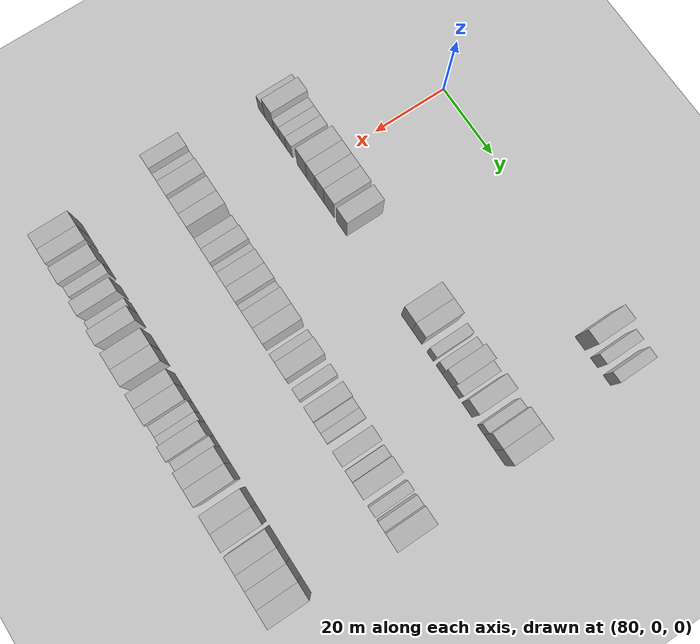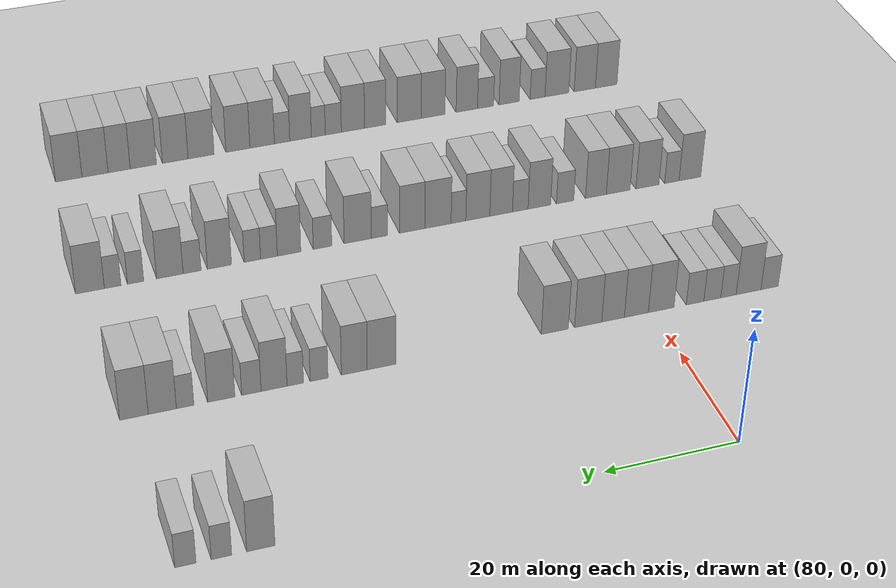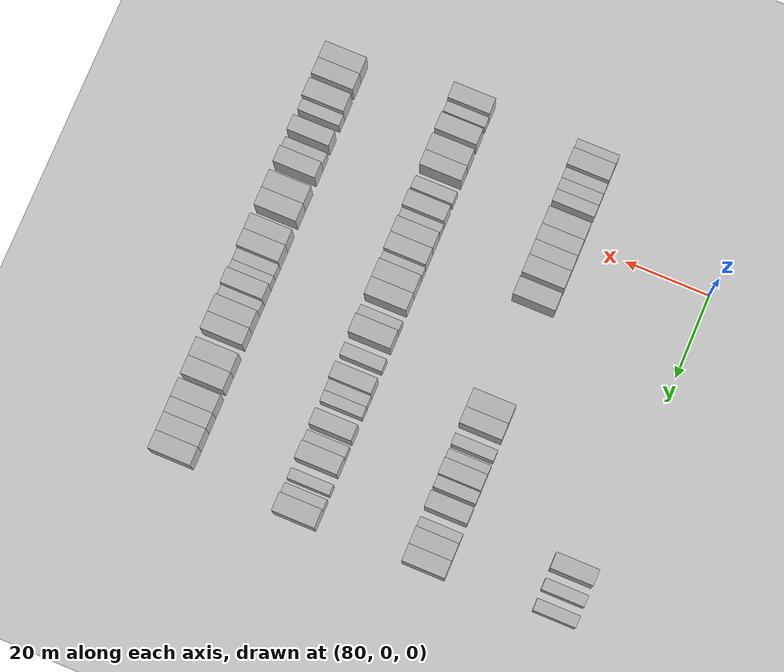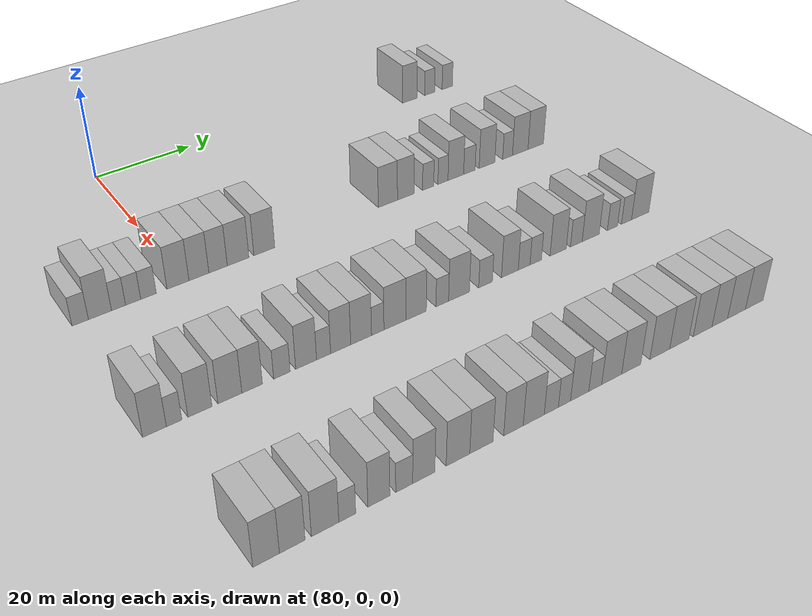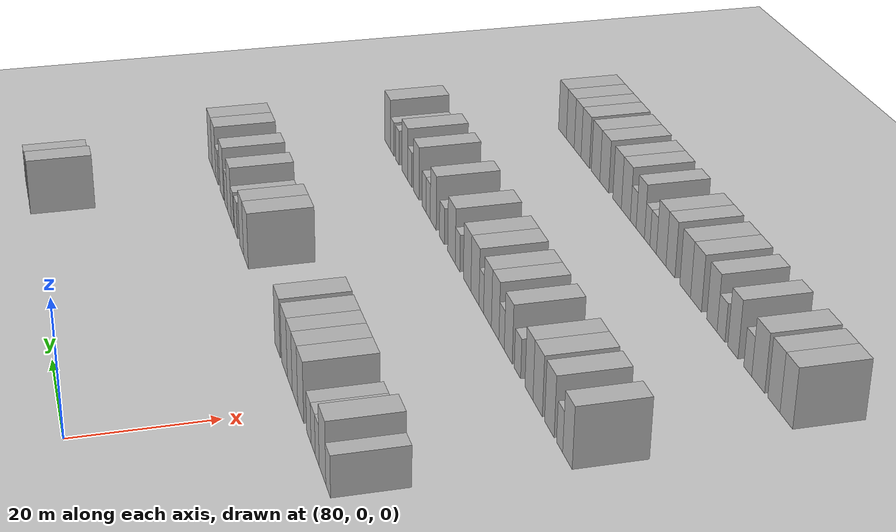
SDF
<sdf version="1.6">
 <world name="default">
  <include>
   <name>ground_plane_2</name>
   <uri>model://HANNAS_ground_plane</uri>
   <pose>100 0 0  0 0 0</pose>
  </include>
  <model name="building_585">
   <static>1</static>
   <pose>85.0000 68.0775 0 0.000000 0.000000 0.000000</pose>
   <link name="link">
    <pose>0 0 4.50 0 0 0</pose>
    <collision name="collision"><geometry><box><size>10.0000 3.7911 9.0000</size></box></geometry></collision>
    <visual name="visual">
     <cast_shadows>0</cast_shadows>
     <geometry><box><size>10.0000 3.7911 9.0000</size></box></geometry>
     <material>
      <script>
       <uri>model://HANNAS_wall/materials/scripts</uri>
       <uri>model://HANNAS_wall/materials/textures</uri>
       <name>vrc/HANNAS_wall</name>
      </script>
     </material>
    </visual>
   </link>
  </model>
  <model name="building_586">
   <static>1</static>
   <pose>85.0000 73.3344 0 0.000000 0.000000 0.000000</pose>
   <link name="link">
    <pose>0 0 3.00 0 0 0</pose>
    <collision name="collision"><geometry><box><size>10.0000 2.7229 6.0000</size></box></geometry></collision>
    <visual name="visual">
     <cast_shadows>0</cast_shadows>
     <geometry><box><size>10.0000 2.7229 6.0000</size></box></geometry>
     <material>
      <script>
       <uri>model://HANNAS_wall/materials/scripts</uri>
       <uri>model://HANNAS_wall/materials/textures</uri>
       <name>vrc/HANNAS_wall</name>
      </script>
     </material>
    </visual>
   </link>
  </model>
  <model name="building_587">
   <static>1</static>
   <pose>85.0000 78.1020 0 0.000000 0.000000 0.000000</pose>
   <link name="link">
    <pose>0 0 3.00 0 0 0</pose>
    <collision name="collision"><geometry><box><size>10.0000 2.8124 6.0000</size></box></geometry></collision>
    <visual name="visual">
     <cast_shadows>0</cast_shadows>
     <geometry><box><size>10.0000 2.8124 6.0000</size></box></geometry>
     <material>
      <script>
       <uri>model://HANNAS_wall/materials/scripts</uri>
       <uri>model://HANNAS_wall/materials/textures</uri>
       <name>vrc/HANNAS_wall</name>
      </script>
     </material>
    </visual>
   </link>
  </model>
  <model name="building_801">
   <static>1</static>
   <pose>115.0000 -19.0899 0 0.000000 0.000000 0.000000</pose>
   <link name="link">
    <pose>0 0 3.00 0 0 0</pose>
    <collision name="collision"><geometry><box><size>10.0000 2.8772 6.0000</size></box></geometry></collision>
    <visual name="visual">
     <cast_shadows>0</cast_shadows>
     <geometry><box><size>10.0000 2.8772 6.0000</size></box></geometry>
     <material>
      <script>
       <uri>model://HANNAS_wall/materials/scripts</uri>
       <uri>model://HANNAS_wall/materials/textures</uri>
       <name>vrc/HANNAS_wall</name>
      </script>
     </material>
    </visual>
   </link>
  </model>
  <model name="building_802">
   <static>1</static>
   <pose>115.0000 -15.6018 0 0.000000 0.000000 0.000000</pose>
   <link name="link">
    <pose>0 0 4.50 0 0 0</pose>
    <collision name="collision"><geometry><box><size>10.0000 4.0990 9.0000</size></box></geometry></collision>
    <visual name="visual">
     <cast_shadows>0</cast_shadows>
     <geometry><box><size>10.0000 4.0990 9.0000</size></box></geometry>
     <material>
      <script>
       <uri>model://HANNAS_wall/materials/scripts</uri>
       <uri>model://HANNAS_wall/materials/textures</uri>
       <name>vrc/HANNAS_wall</name>
      </script>
     </material>
    </visual>
   </link>
  </model>
  <model name="building_803">
   <static>1</static>
   <pose>115.0000 -12.2894 0 0.000000 0.000000 0.000000</pose>
   <link name="link">
    <pose>0 0 3.00 0 0 0</pose>
    <collision name="collision"><geometry><box><size>10.0000 2.5258 6.0000</size></box></geometry></collision>
    <visual name="visual">
     <cast_shadows>0</cast_shadows>
     <geometry><box><size>10.0000 2.5258 6.0000</size></box></geometry>
     <material>
      <script>
       <uri>model://HANNAS_wall/materials/scripts</uri>
       <uri>model://HANNAS_wall/materials/textures</uri>
       <name>vrc/HANNAS_wall</name>
      </script>
     </material>
    </visual>
   </link>
  </model>
  <model name="building_804">
   <static>1</static>
   <pose>115.0000 -9.6391 0 0.000000 0.000000 0.000000</pose>
   <link name="link">
    <pose>0 0 3.00 0 0 0</pose>
    <collision name="collision"><geometry><box><size>10.0000 2.7747 6.0000</size></box></geometry></collision>
    <visual name="visual">
     <cast_shadows>0</cast_shadows>
     <geometry><box><size>10.0000 2.7747 6.0000</size></box></geometry>
     <material>
      <script>
       <uri>model://HANNAS_wall/materials/scripts</uri>
       <uri>model://HANNAS_wall/materials/textures</uri>
       <name>vrc/HANNAS_wall</name>
      </script>
     </material>
    </visual>
   </link>
  </model>
  <model name="building_805">
   <static>1</static>
   <pose>115.0000 -6.8120 0 0.000000 0.000000 0.000000</pose>
   <link name="link">
    <pose>0 0 3.00 0 0 0</pose>
    <collision name="collision"><geometry><box><size>10.0000 2.8796 6.0000</size></box></geometry></collision>
    <visual name="visual">
     <cast_shadows>0</cast_shadows>
     <geometry><box><size>10.0000 2.8796 6.0000</size></box></geometry>
     <material>
      <script>
       <uri>model://HANNAS_wall/materials/scripts</uri>
       <uri>model://HANNAS_wall/materials/textures</uri>
       <name>vrc/HANNAS_wall</name>
      </script>
     </material>
    </visual>
   </link>
  </model>
  <model name="building_806">
   <static>1</static>
   <pose>115.0000 -1.2916 0 0.000000 0.000000 0.000000</pose>
   <link name="link">
    <pose>0 0 4.50 0 0 0</pose>
    <collision name="collision"><geometry><box><size>10.0000 4.1612 9.0000</size></box></geometry></collision>
    <visual name="visual">
     <cast_shadows>0</cast_shadows>
     <geometry><box><size>10.0000 4.1612 9.0000</size></box></geometry>
     <material>
      <script>
       <uri>model://HANNAS_wall/materials/scripts</uri>
       <uri>model://HANNAS_wall/materials/textures</uri>
       <name>vrc/HANNAS_wall</name>
      </script>
     </material>
    </visual>
   </link>
  </model>
  <model name="building_807">
   <static>1</static>
   <pose>115.0000 2.7158 0 0.000000 0.000000 0.000000</pose>
   <link name="link">
    <pose>0 0 4.50 0 0 0</pose>
    <collision name="collision"><geometry><box><size>10.0000 3.8537 9.0000</size></box></geometry></collision>
    <visual name="visual">
     <cast_shadows>0</cast_shadows>
     <geometry><box><size>10.0000 3.8537 9.0000</size></box></geometry>
     <material>
      <script>
       <uri>model://HANNAS_wall/materials/scripts</uri>
       <uri>model://HANNAS_wall/materials/textures</uri>
       <name>vrc/HANNAS_wall</name>
      </script>
     </material>
    </visual>
   </link>
  </model>
  <model name="building_808">
   <static>1</static>
   <pose>115.0000 6.4506 0 0.000000 0.000000 0.000000</pose>
   <link name="link">
    <pose>0 0 4.50 0 0 0</pose>
    <collision name="collision"><geometry><box><size>10.0000 3.6159 9.0000</size></box></geometry></collision>
    <visual name="visual">
     <cast_shadows>0</cast_shadows>
     <geometry><box><size>10.0000 3.6159 9.0000</size></box></geometry>
     <material>
      <script>
       <uri>model://HANNAS_wall/materials/scripts</uri>
       <uri>model://HANNAS_wall/materials/textures</uri>
       <name>vrc/HANNAS_wall</name>
      </script>
     </material>
    </visual>
   </link>
  </model>
  <model name="building_809">
   <static>1</static>
   <pose>115.0000 10.4157 0 0.000000 0.000000 0.000000</pose>
   <link name="link">
    <pose>0 0 4.50 0 0 0</pose>
    <collision name="collision"><geometry><box><size>10.0000 4.3143 9.0000</size></box></geometry></collision>
    <visual name="visual">
     <cast_shadows>0</cast_shadows>
     <geometry><box><size>10.0000 4.3143 9.0000</size></box></geometry>
     <material>
      <script>
       <uri>model://HANNAS_wall/materials/scripts</uri>
       <uri>model://HANNAS_wall/materials/textures</uri>
       <name>vrc/HANNAS_wall</name>
      </script>
     </material>
    </visual>
   </link>
  </model>
  <model name="building_810">
   <static>1</static>
   <pose>115.0000 15.7056 0 0.000000 0.000000 0.000000</pose>
   <link name="link">
    <pose>0 0 4.50 0 0 0</pose>
    <collision name="collision"><geometry><box><size>10.0000 4.2655 9.0000</size></box></geometry></collision>
    <visual name="visual">
     <cast_shadows>0</cast_shadows>
     <geometry><box><size>10.0000 4.2655 9.0000</size></box></geometry>
     <material>
      <script>
       <uri>model://HANNAS_wall/materials/scripts</uri>
       <uri>model://HANNAS_wall/materials/textures</uri>
       <name>vrc/HANNAS_wall</name>
      </script>
     </material>
    </visual>
   </link>
  </model>
  <model name="building_811">
   <static>1</static>
   <pose>115.0000 42.4149 0 0.000000 0.000000 0.000000</pose>
   <link name="link">
    <pose>0 0 4.50 0 0 0</pose>
    <collision name="collision"><geometry><box><size>10.0000 4.3843 9.0000</size></box></geometry></collision>
    <visual name="visual">
     <cast_shadows>0</cast_shadows>
     <geometry><box><size>10.0000 4.3843 9.0000</size></box></geometry>
     <material>
      <script>
       <uri>model://HANNAS_wall/materials/scripts</uri>
       <uri>model://HANNAS_wall/materials/textures</uri>
       <name>vrc/HANNAS_wall</name>
      </script>
     </material>
    </visual>
   </link>
  </model>
  <model name="building_812">
   <static>1</static>
   <pose>115.0000 46.5384 0 0.000000 0.000000 0.000000</pose>
   <link name="link">
    <pose>0 0 4.50 0 0 0</pose>
    <collision name="collision"><geometry><box><size>10.0000 3.8627 9.0000</size></box></geometry></collision>
    <visual name="visual">
     <cast_shadows>0</cast_shadows>
     <geometry><box><size>10.0000 3.8627 9.0000</size></box></geometry>
     <material>
      <script>
       <uri>model://HANNAS_wall/materials/scripts</uri>
       <uri>model://HANNAS_wall/materials/textures</uri>
       <name>vrc/HANNAS_wall</name>
      </script>
     </material>
    </visual>
   </link>
  </model>
  <model name="building_813">
   <static>1</static>
   <pose>115.0000 51.7939 0 0.000000 0.000000 0.000000</pose>
   <link name="link">
    <pose>0 0 3.00 0 0 0</pose>
    <collision name="collision"><geometry><box><size>10.0000 2.6484 6.0000</size></box></geometry></collision>
    <visual name="visual">
     <cast_shadows>0</cast_shadows>
     <geometry><box><size>10.0000 2.6484 6.0000</size></box></geometry>
     <material>
      <script>
       <uri>model://HANNAS_wall/materials/scripts</uri>
       <uri>model://HANNAS_wall/materials/textures</uri>
       <name>vrc/HANNAS_wall</name>
      </script>
     </material>
    </visual>
   </link>
  </model>
  <model name="building_814">
   <static>1</static>
   <pose>115.0000 55.3272 0 0.000000 0.000000 0.000000</pose>
   <link name="link">
    <pose>0 0 3.00 0 0 0</pose>
    <collision name="collision"><geometry><box><size>10.0000 2.4182 6.0000</size></box></geometry></collision>
    <visual name="visual">
     <cast_shadows>0</cast_shadows>
     <geometry><box><size>10.0000 2.4182 6.0000</size></box></geometry>
     <material>
      <script>
       <uri>model://HANNAS_wall/materials/scripts</uri>
       <uri>model://HANNAS_wall/materials/textures</uri>
       <name>vrc/HANNAS_wall</name>
      </script>
     </material>
    </visual>
   </link>
  </model>
  <model name="building_815">
   <static>1</static>
   <pose>115.0000 58.4469 0 0.000000 0.000000 0.000000</pose>
   <link name="link">
    <pose>0 0 4.50 0 0 0</pose>
    <collision name="collision"><geometry><box><size>10.0000 3.8212 9.0000</size></box></geometry></collision>
    <visual name="visual">
     <cast_shadows>0</cast_shadows>
     <geometry><box><size>10.0000 3.8212 9.0000</size></box></geometry>
     <material>
      <script>
       <uri>model://HANNAS_wall/materials/scripts</uri>
       <uri>model://HANNAS_wall/materials/textures</uri>
       <name>vrc/HANNAS_wall</name>
      </script>
     </material>
    </visual>
   </link>
  </model>
  <model name="building_816">
   <static>1</static>
   <pose>115.0000 61.7723 0 0.000000 0.000000 0.000000</pose>
   <link name="link">
    <pose>0 0 3.00 0 0 0</pose>
    <collision name="collision"><geometry><box><size>10.0000 2.8297 6.0000</size></box></geometry></collision>
    <visual name="visual">
     <cast_shadows>0</cast_shadows>
     <geometry><box><size>10.0000 2.8297 6.0000</size></box></geometry>
     <material>
      <script>
       <uri>model://HANNAS_wall/materials/scripts</uri>
       <uri>model://HANNAS_wall/materials/textures</uri>
       <name>vrc/HANNAS_wall</name>
      </script>
     </material>
    </visual>
   </link>
  </model>
  <model name="building_817">
   <static>1</static>
   <pose>115.0000 66.1587 0 0.000000 0.000000 0.000000</pose>
   <link name="link">
    <pose>0 0 4.50 0 0 0</pose>
    <collision name="collision"><geometry><box><size>10.0000 3.9430 9.0000</size></box></geometry></collision>
    <visual name="visual">
     <cast_shadows>0</cast_shadows>
     <geometry><box><size>10.0000 3.9430 9.0000</size></box></geometry>
     <material>
      <script>
       <uri>model://HANNAS_wall/materials/scripts</uri>
       <uri>model://HANNAS_wall/materials/textures</uri>
       <name>vrc/HANNAS_wall</name>
      </script>
     </material>
    </visual>
   </link>
  </model>
  <model name="building_818">
   <static>1</static>
   <pose>115.0000 71.3843 0 0.000000 0.000000 0.000000</pose>
   <link name="link">
    <pose>0 0 3.00 0 0 0</pose>
    <collision name="collision"><geometry><box><size>10.0000 2.5081 6.0000</size></box></geometry></collision>
    <visual name="visual">
     <cast_shadows>0</cast_shadows>
     <geometry><box><size>10.0000 2.5081 6.0000</size></box></geometry>
     <material>
      <script>
       <uri>model://HANNAS_wall/materials/scripts</uri>
       <uri>model://HANNAS_wall/materials/textures</uri>
       <name>vrc/HANNAS_wall</name>
      </script>
     </material>
    </visual>
   </link>
  </model>
  <model name="building_819">
   <static>1</static>
   <pose>115.0000 74.6583 0 0.000000 0.000000 0.000000</pose>
   <link name="link">
    <pose>0 0 4.50 0 0 0</pose>
    <collision name="collision"><geometry><box><size>10.0000 4.0400 9.0000</size></box></geometry></collision>
    <visual name="visual">
     <cast_shadows>0</cast_shadows>
     <geometry><box><size>10.0000 4.0400 9.0000</size></box></geometry>
     <material>
      <script>
       <uri>model://HANNAS_wall/materials/scripts</uri>
       <uri>model://HANNAS_wall/materials/textures</uri>
       <name>vrc/HANNAS_wall</name>
      </script>
     </material>
    </visual>
   </link>
  </model>
  <model name="building_820">
   <static>1</static>
   <pose>115.0000 78.7091 0 0.000000 0.000000 0.000000</pose>
   <link name="link">
    <pose>0 0 4.50 0 0 0</pose>
    <collision name="collision"><geometry><box><size>10.0000 4.0615 9.0000</size></box></geometry></collision>
    <visual name="visual">
     <cast_shadows>0</cast_shadows>
     <geometry><box><size>10.0000 4.0615 9.0000</size></box></geometry>
     <material>
      <script>
       <uri>model://HANNAS_wall/materials/scripts</uri>
       <uri>model://HANNAS_wall/materials/textures</uri>
       <name>vrc/HANNAS_wall</name>
      </script>
     </material>
    </visual>
   </link>
  </model>
  <model name="building_1024">
   <static>1</static>
   <pose>145.0000 -19.3306 0 0.000000 0.000000 0.000000</pose>
   <link name="link">
    <pose>0 0 4.50 0 0 0</pose>
    <collision name="collision"><geometry><box><size>10.0000 3.8373 9.0000</size></box></geometry></collision>
    <visual name="visual">
     <cast_shadows>0</cast_shadows>
     <geometry><box><size>10.0000 3.8373 9.0000</size></box></geometry>
     <material>
      <script>
       <uri>model://HANNAS_wall/materials/scripts</uri>
       <uri>model://HANNAS_wall/materials/textures</uri>
       <name>vrc/HANNAS_wall</name>
      </script>
     </material>
    </visual>
   </link>
  </model>
  <model name="building_1025">
   <static>1</static>
   <pose>145.0000 -16.1372 0 0.000000 0.000000 0.000000</pose>
   <link name="link">
    <pose>0 0 3.00 0 0 0</pose>
    <collision name="collision"><geometry><box><size>10.0000 2.5495 6.0000</size></box></geometry></collision>
    <visual name="visual">
     <cast_shadows>0</cast_shadows>
     <geometry><box><size>10.0000 2.5495 6.0000</size></box></geometry>
     <material>
      <script>
       <uri>model://HANNAS_wall/materials/scripts</uri>
       <uri>model://HANNAS_wall/materials/textures</uri>
       <name>vrc/HANNAS_wall</name>
      </script>
     </material>
    </visual>
   </link>
  </model>
  <model name="building_1026">
   <static>1</static>
   <pose>145.0000 -11.8369 0 0.000000 0.000000 0.000000</pose>
   <link name="link">
    <pose>0 0 4.50 0 0 0</pose>
    <collision name="collision"><geometry><box><size>10.0000 4.0511 9.0000</size></box></geometry></collision>
    <visual name="visual">
     <cast_shadows>0</cast_shadows>
     <geometry><box><size>10.0000 4.0511 9.0000</size></box></geometry>
     <material>
      <script>
       <uri>model://HANNAS_wall/materials/scripts</uri>
       <uri>model://HANNAS_wall/materials/textures</uri>
       <name>vrc/HANNAS_wall</name>
      </script>
     </material>
    </visual>
   </link>
  </model>
  <model name="building_1027">
   <static>1</static>
   <pose>145.0000 -6.7454 0 0.000000 0.000000 0.000000</pose>
   <link name="link">
    <pose>0 0 4.50 0 0 0</pose>
    <collision name="collision"><geometry><box><size>10.0000 4.1319 9.0000</size></box></geometry></collision>
    <visual name="visual">
     <cast_shadows>0</cast_shadows>
     <geometry><box><size>10.0000 4.1319 9.0000</size></box></geometry>
     <material>
      <script>
       <uri>model://HANNAS_wall/materials/scripts</uri>
       <uri>model://HANNAS_wall/materials/textures</uri>
       <name>vrc/HANNAS_wall</name>
      </script>
     </material>
    </visual>
   </link>
  </model>
  <model name="building_1028">
   <static>1</static>
   <pose>145.0000 -2.8711 0 0.000000 0.000000 0.000000</pose>
   <link name="link">
    <pose>0 0 4.50 0 0 0</pose>
    <collision name="collision"><geometry><box><size>10.0000 3.6167 9.0000</size></box></geometry></collision>
    <visual name="visual">
     <cast_shadows>0</cast_shadows>
     <geometry><box><size>10.0000 3.6167 9.0000</size></box></geometry>
     <material>
      <script>
       <uri>model://HANNAS_wall/materials/scripts</uri>
       <uri>model://HANNAS_wall/materials/textures</uri>
       <name>vrc/HANNAS_wall</name>
      </script>
     </material>
    </visual>
   </link>
  </model>
  <model name="building_1029">
   <static>1</static>
   <pose>145.0000 2.4259 0 0.000000 0.000000 0.000000</pose>
   <link name="link">
    <pose>0 0 3.00 0 0 0</pose>
    <collision name="collision"><geometry><box><size>10.0000 2.9773 6.0000</size></box></geometry></collision>
    <visual name="visual">
     <cast_shadows>0</cast_shadows>
     <geometry><box><size>10.0000 2.9773 6.0000</size></box></geometry>
     <material>
      <script>
       <uri>model://HANNAS_wall/materials/scripts</uri>
       <uri>model://HANNAS_wall/materials/textures</uri>
       <name>vrc/HANNAS_wall</name>
      </script>
     </material>
    </visual>
   </link>
  </model>
  <model name="building_1030">
   <static>1</static>
   <pose>145.0000 6.8378 0 0.000000 0.000000 0.000000</pose>
   <link name="link">
    <pose>0 0 4.50 0 0 0</pose>
    <collision name="collision"><geometry><box><size>10.0000 3.8467 9.0000</size></box></geometry></collision>
    <visual name="visual">
     <cast_shadows>0</cast_shadows>
     <geometry><box><size>10.0000 3.8467 9.0000</size></box></geometry>
     <material>
      <script>
       <uri>model://HANNAS_wall/materials/scripts</uri>
       <uri>model://HANNAS_wall/materials/textures</uri>
       <name>vrc/HANNAS_wall</name>
      </script>
     </material>
    </visual>
   </link>
  </model>
  <model name="building_1031">
   <static>1</static>
   <pose>145.0000 10.0848 0 0.000000 0.000000 0.000000</pose>
   <link name="link">
    <pose>0 0 3.00 0 0 0</pose>
    <collision name="collision"><geometry><box><size>10.0000 2.6473 6.0000</size></box></geometry></collision>
    <visual name="visual">
     <cast_shadows>0</cast_shadows>
     <geometry><box><size>10.0000 2.6473 6.0000</size></box></geometry>
     <material>
      <script>
       <uri>model://HANNAS_wall/materials/scripts</uri>
       <uri>model://HANNAS_wall/materials/textures</uri>
       <name>vrc/HANNAS_wall</name>
      </script>
     </material>
    </visual>
   </link>
  </model>
  <model name="building_1032">
   <static>1</static>
   <pose>145.0000 13.3184 0 0.000000 0.000000 0.000000</pose>
   <link name="link">
    <pose>0 0 4.50 0 0 0</pose>
    <collision name="collision"><geometry><box><size>10.0000 3.8199 9.0000</size></box></geometry></collision>
    <visual name="visual">
     <cast_shadows>0</cast_shadows>
     <geometry><box><size>10.0000 3.8199 9.0000</size></box></geometry>
     <material>
      <script>
       <uri>model://HANNAS_wall/materials/scripts</uri>
       <uri>model://HANNAS_wall/materials/textures</uri>
       <name>vrc/HANNAS_wall</name>
      </script>
     </material>
    </visual>
   </link>
  </model>
  <model name="building_1033">
   <static>1</static>
   <pose>145.0000 17.2439 0 0.000000 0.000000 0.000000</pose>
   <link name="link">
    <pose>0 0 4.50 0 0 0</pose>
    <collision name="collision"><geometry><box><size>10.0000 4.0311 9.0000</size></box></geometry></collision>
    <visual name="visual">
     <cast_shadows>0</cast_shadows>
     <geometry><box><size>10.0000 4.0311 9.0000</size></box></geometry>
     <material>
      <script>
       <uri>model://HANNAS_wall/materials/scripts</uri>
       <uri>model://HANNAS_wall/materials/textures</uri>
       <name>vrc/HANNAS_wall</name>
      </script>
     </material>
    </visual>
   </link>
  </model>
  <model name="building_1034">
   <static>1</static>
   <pose>145.0000 20.4848 0 0.000000 0.000000 0.000000</pose>
   <link name="link">
    <pose>0 0 3.00 0 0 0</pose>
    <collision name="collision"><geometry><box><size>10.0000 2.4508 6.0000</size></box></geometry></collision>
    <visual name="visual">
     <cast_shadows>0</cast_shadows>
     <geometry><box><size>10.0000 2.4508 6.0000</size></box></geometry>
     <material>
      <script>
       <uri>model://HANNAS_wall/materials/scripts</uri>
       <uri>model://HANNAS_wall/materials/textures</uri>
       <name>vrc/HANNAS_wall</name>
      </script>
     </material>
    </visual>
   </link>
  </model>
  <model name="building_1035">
   <static>1</static>
   <pose>145.0000 23.8994 0 0.000000 0.000000 0.000000</pose>
   <link name="link">
    <pose>0 0 4.50 0 0 0</pose>
    <collision name="collision"><geometry><box><size>10.0000 4.3783 9.0000</size></box></geometry></collision>
    <visual name="visual">
     <cast_shadows>0</cast_shadows>
     <geometry><box><size>10.0000 4.3783 9.0000</size></box></geometry>
     <material>
      <script>
       <uri>model://HANNAS_wall/materials/scripts</uri>
       <uri>model://HANNAS_wall/materials/textures</uri>
       <name>vrc/HANNAS_wall</name>
      </script>
     </material>
    </visual>
   </link>
  </model>
  <model name="building_1036">
   <static>1</static>
   <pose>145.0000 28.1736 0 0.000000 0.000000 0.000000</pose>
   <link name="link">
    <pose>0 0 4.50 0 0 0</pose>
    <collision name="collision"><geometry><box><size>10.0000 4.1701 9.0000</size></box></geometry></collision>
    <visual name="visual">
     <cast_shadows>0</cast_shadows>
     <geometry><box><size>10.0000 4.1701 9.0000</size></box></geometry>
     <material>
      <script>
       <uri>model://HANNAS_wall/materials/scripts</uri>
       <uri>model://HANNAS_wall/materials/textures</uri>
       <name>vrc/HANNAS_wall</name>
      </script>
     </material>
    </visual>
   </link>
  </model>
  <model name="building_1037">
   <static>1</static>
   <pose>145.0000 33.5786 0 0.000000 0.000000 0.000000</pose>
   <link name="link">
    <pose>0 0 3.00 0 0 0</pose>
    <collision name="collision"><geometry><box><size>10.0000 2.6398 6.0000</size></box></geometry></collision>
    <visual name="visual">
     <cast_shadows>0</cast_shadows>
     <geometry><box><size>10.0000 2.6398 6.0000</size></box></geometry>
     <material>
      <script>
       <uri>model://HANNAS_wall/materials/scripts</uri>
       <uri>model://HANNAS_wall/materials/textures</uri>
       <name>vrc/HANNAS_wall</name>
      </script>
     </material>
    </visual>
   </link>
  </model>
  <model name="building_1038">
   <static>1</static>
   <pose>145.0000 37.1103 0 0.000000 0.000000 0.000000</pose>
   <link name="link">
    <pose>0 0 4.50 0 0 0</pose>
    <collision name="collision"><geometry><box><size>10.0000 4.4237 9.0000</size></box></geometry></collision>
    <visual name="visual">
     <cast_shadows>0</cast_shadows>
     <geometry><box><size>10.0000 4.4237 9.0000</size></box></geometry>
     <material>
      <script>
       <uri>model://HANNAS_wall/materials/scripts</uri>
       <uri>model://HANNAS_wall/materials/textures</uri>
       <name>vrc/HANNAS_wall</name>
      </script>
     </material>
    </visual>
   </link>
  </model>
  <model name="building_1039">
   <static>1</static>
   <pose>145.0000 42.8186 0 0.000000 0.000000 0.000000</pose>
   <link name="link">
    <pose>0 0 3.00 0 0 0</pose>
    <collision name="collision"><geometry><box><size>10.0000 2.9929 6.0000</size></box></geometry></collision>
    <visual name="visual">
     <cast_shadows>0</cast_shadows>
     <geometry><box><size>10.0000 2.9929 6.0000</size></box></geometry>
     <material>
      <script>
       <uri>model://HANNAS_wall/materials/scripts</uri>
       <uri>model://HANNAS_wall/materials/textures</uri>
       <name>vrc/HANNAS_wall</name>
      </script>
     </material>
    </visual>
   </link>
  </model>
  <model name="building_1040">
   <static>1</static>
   <pose>145.0000 48.1933 0 0.000000 0.000000 0.000000</pose>
   <link name="link">
    <pose>0 0 4.50 0 0 0</pose>
    <collision name="collision"><geometry><box><size>10.0000 3.7564 9.0000</size></box></geometry></collision>
    <visual name="visual">
     <cast_shadows>0</cast_shadows>
     <geometry><box><size>10.0000 3.7564 9.0000</size></box></geometry>
     <material>
      <script>
       <uri>model://HANNAS_wall/materials/scripts</uri>
       <uri>model://HANNAS_wall/materials/textures</uri>
       <name>vrc/HANNAS_wall</name>
      </script>
     </material>
    </visual>
   </link>
  </model>
  <model name="building_1041">
   <static>1</static>
   <pose>145.0000 51.4030 0 0.000000 0.000000 0.000000</pose>
   <link name="link">
    <pose>0 0 3.00 0 0 0</pose>
    <collision name="collision"><geometry><box><size>10.0000 2.6631 6.0000</size></box></geometry></collision>
    <visual name="visual">
     <cast_shadows>0</cast_shadows>
     <geometry><box><size>10.0000 2.6631 6.0000</size></box></geometry>
     <material>
      <script>
       <uri>model://HANNAS_wall/materials/scripts</uri>
       <uri>model://HANNAS_wall/materials/textures</uri>
       <name>vrc/HANNAS_wall</name>
      </script>
     </material>
    </visual>
   </link>
  </model>
  <model name="building_1042">
   <static>1</static>
   <pose>145.0000 54.0451 0 0.000000 0.000000 0.000000</pose>
   <link name="link">
    <pose>0 0 3.00 0 0 0</pose>
    <collision name="collision"><geometry><box><size>10.0000 2.6212 6.0000</size></box></geometry></collision>
    <visual name="visual">
     <cast_shadows>0</cast_shadows>
     <geometry><box><size>10.0000 2.6212 6.0000</size></box></geometry>
     <material>
      <script>
       <uri>model://HANNAS_wall/materials/scripts</uri>
       <uri>model://HANNAS_wall/materials/textures</uri>
       <name>vrc/HANNAS_wall</name>
      </script>
     </material>
    </visual>
   </link>
  </model>
  <model name="building_1043">
   <static>1</static>
   <pose>145.0000 59.2541 0 0.000000 0.000000 0.000000</pose>
   <link name="link">
    <pose>0 0 4.50 0 0 0</pose>
    <collision name="collision"><geometry><box><size>10.0000 3.7969 9.0000</size></box></geometry></collision>
    <visual name="visual">
     <cast_shadows>0</cast_shadows>
     <geometry><box><size>10.0000 3.7969 9.0000</size></box></geometry>
     <material>
      <script>
       <uri>model://HANNAS_wall/materials/scripts</uri>
       <uri>model://HANNAS_wall/materials/textures</uri>
       <name>vrc/HANNAS_wall</name>
      </script>
     </material>
    </visual>
   </link>
  </model>
  <model name="building_1044">
   <static>1</static>
   <pose>145.0000 63.5532 0 0.000000 0.000000 0.000000</pose>
   <link name="link">
    <pose>0 0 3.00 0 0 0</pose>
    <collision name="collision"><geometry><box><size>10.0000 2.8012 6.0000</size></box></geometry></collision>
    <visual name="visual">
     <cast_shadows>0</cast_shadows>
     <geometry><box><size>10.0000 2.8012 6.0000</size></box></geometry>
     <material>
      <script>
       <uri>model://HANNAS_wall/materials/scripts</uri>
       <uri>model://HANNAS_wall/materials/textures</uri>
       <name>vrc/HANNAS_wall</name>
      </script>
     </material>
    </visual>
   </link>
  </model>
  <model name="building_1045">
   <static>1</static>
   <pose>145.0000 67.0201 0 0.000000 0.000000 0.000000</pose>
   <link name="link">
    <pose>0 0 4.50 0 0 0</pose>
    <collision name="collision"><geometry><box><size>10.0000 4.1326 9.0000</size></box></geometry></collision>
    <visual name="visual">
     <cast_shadows>0</cast_shadows>
     <geometry><box><size>10.0000 4.1326 9.0000</size></box></geometry>
     <material>
      <script>
       <uri>model://HANNAS_wall/materials/scripts</uri>
       <uri>model://HANNAS_wall/materials/textures</uri>
       <name>vrc/HANNAS_wall</name>
      </script>
     </material>
    </visual>
   </link>
  </model>
  <model name="building_1046">
   <static>1</static>
   <pose>145.0000 72.3403 0 0.000000 0.000000 0.000000</pose>
   <link name="link">
    <pose>0 0 3.00 0 0 0</pose>
    <collision name="collision"><geometry><box><size>10.0000 2.5078 6.0000</size></box></geometry></collision>
    <visual name="visual">
     <cast_shadows>0</cast_shadows>
     <geometry><box><size>10.0000 2.5078 6.0000</size></box></geometry>
     <material>
      <script>
       <uri>model://HANNAS_wall/materials/scripts</uri>
       <uri>model://HANNAS_wall/materials/textures</uri>
       <name>vrc/HANNAS_wall</name>
      </script>
     </material>
    </visual>
   </link>
  </model>
  <model name="building_1047">
   <static>1</static>
   <pose>145.0000 75.8654 0 0.000000 0.000000 0.000000</pose>
   <link name="link">
    <pose>0 0 3.00 0 0 0</pose>
    <collision name="collision"><geometry><box><size>10.0000 2.5424 6.0000</size></box></geometry></collision>
    <visual name="visual">
     <cast_shadows>0</cast_shadows>
     <geometry><box><size>10.0000 2.5424 6.0000</size></box></geometry>
     <material>
      <script>
       <uri>model://HANNAS_wall/materials/scripts</uri>
       <uri>model://HANNAS_wall/materials/textures</uri>
       <name>vrc/HANNAS_wall</name>
      </script>
     </material>
    </visual>
   </link>
  </model>
  <model name="building_1048">
   <static>1</static>
   <pose>145.0000 79.3381 0 0.000000 0.000000 0.000000</pose>
   <link name="link">
    <pose>0 0 4.50 0 0 0</pose>
    <collision name="collision"><geometry><box><size>10.0000 4.4030 9.0000</size></box></geometry></collision>
    <visual name="visual">
     <cast_shadows>0</cast_shadows>
     <geometry><box><size>10.0000 4.4030 9.0000</size></box></geometry>
     <material>
      <script>
       <uri>model://HANNAS_wall/materials/scripts</uri>
       <uri>model://HANNAS_wall/materials/textures</uri>
       <name>vrc/HANNAS_wall</name>
      </script>
     </material>
    </visual>
   </link>
  </model>
  <model name="building_1250">
   <static>1</static>
   <pose>175.0000 -16.8735 0 0.000000 0.000000 0.000000</pose>
   <link name="link">
    <pose>0 0 4.50 0 0 0</pose>
    <collision name="collision"><geometry><box><size>10.0000 4.0252 9.0000</size></box></geometry></collision>
    <visual name="visual">
     <cast_shadows>0</cast_shadows>
     <geometry><box><size>10.0000 4.0252 9.0000</size></box></geometry>
     <material>
      <script>
       <uri>model://HANNAS_wall/materials/scripts</uri>
       <uri>model://HANNAS_wall/materials/textures</uri>
       <name>vrc/HANNAS_wall</name>
      </script>
     </material>
    </visual>
   </link>
  </model>
  <model name="building_1251">
   <static>1</static>
   <pose>175.0000 -12.8777 0 0.000000 0.000000 0.000000</pose>
   <link name="link">
    <pose>0 0 4.50 0 0 0</pose>
    <collision name="collision"><geometry><box><size>10.0000 3.9664 9.0000</size></box></geometry></collision>
    <visual name="visual">
     <cast_shadows>0</cast_shadows>
     <geometry><box><size>10.0000 3.9664 9.0000</size></box></geometry>
     <material>
      <script>
       <uri>model://HANNAS_wall/materials/scripts</uri>
       <uri>model://HANNAS_wall/materials/textures</uri>
       <name>vrc/HANNAS_wall</name>
      </script>
     </material>
    </visual>
   </link>
  </model>
  <model name="building_1252">
   <static>1</static>
   <pose>175.0000 -7.7122 0 0.000000 0.000000 0.000000</pose>
   <link name="link">
    <pose>0 0 4.50 0 0 0</pose>
    <collision name="collision"><geometry><box><size>10.0000 4.3648 9.0000</size></box></geometry></collision>
    <visual name="visual">
     <cast_shadows>0</cast_shadows>
     <geometry><box><size>10.0000 4.3648 9.0000</size></box></geometry>
     <material>
      <script>
       <uri>model://HANNAS_wall/materials/scripts</uri>
       <uri>model://HANNAS_wall/materials/textures</uri>
       <name>vrc/HANNAS_wall</name>
      </script>
     </material>
    </visual>
   </link>
  </model>
  <model name="building_1253">
   <static>1</static>
   <pose>175.0000 -4.1531 0 0.000000 0.000000 0.000000</pose>
   <link name="link">
    <pose>0 0 3.00 0 0 0</pose>
    <collision name="collision"><geometry><box><size>10.0000 2.7533 6.0000</size></box></geometry></collision>
    <visual name="visual">
     <cast_shadows>0</cast_shadows>
     <geometry><box><size>10.0000 2.7533 6.0000</size></box></geometry>
     <material>
      <script>
       <uri>model://HANNAS_wall/materials/scripts</uri>
       <uri>model://HANNAS_wall/materials/textures</uri>
       <name>vrc/HANNAS_wall</name>
      </script>
     </material>
    </visual>
   </link>
  </model>
  <model name="building_1254">
   <static>1</static>
   <pose>175.0000 1.0620 0 0.000000 0.000000 0.000000</pose>
   <link name="link">
    <pose>0 0 4.50 0 0 0</pose>
    <collision name="collision"><geometry><box><size>10.0000 3.6770 9.0000</size></box></geometry></collision>
    <visual name="visual">
     <cast_shadows>0</cast_shadows>
     <geometry><box><size>10.0000 3.6770 9.0000</size></box></geometry>
     <material>
      <script>
       <uri>model://HANNAS_wall/materials/scripts</uri>
       <uri>model://HANNAS_wall/materials/textures</uri>
       <name>vrc/HANNAS_wall</name>
      </script>
     </material>
    </visual>
   </link>
  </model>
  <model name="building_1255">
   <static>1</static>
   <pose>175.0000 5.3555 0 0.000000 0.000000 0.000000</pose>
   <link name="link">
    <pose>0 0 3.00 0 0 0</pose>
    <collision name="collision"><geometry><box><size>10.0000 2.9101 6.0000</size></box></geometry></collision>
    <visual name="visual">
     <cast_shadows>0</cast_shadows>
     <geometry><box><size>10.0000 2.9101 6.0000</size></box></geometry>
     <material>
      <script>
       <uri>model://HANNAS_wall/materials/scripts</uri>
       <uri>model://HANNAS_wall/materials/textures</uri>
       <name>vrc/HANNAS_wall</name>
      </script>
     </material>
    </visual>
   </link>
  </model>
  <model name="building_1256">
   <static>1</static>
   <pose>175.0000 8.7482 0 0.000000 0.000000 0.000000</pose>
   <link name="link">
    <pose>0 0 4.50 0 0 0</pose>
    <collision name="collision"><geometry><box><size>10.0000 3.8752 9.0000</size></box></geometry></collision>
    <visual name="visual">
     <cast_shadows>0</cast_shadows>
     <geometry><box><size>10.0000 3.8752 9.0000</size></box></geometry>
     <material>
      <script>
       <uri>model://HANNAS_wall/materials/scripts</uri>
       <uri>model://HANNAS_wall/materials/textures</uri>
       <name>vrc/HANNAS_wall</name>
      </script>
     </material>
    </visual>
   </link>
  </model>
  <model name="building_1257">
   <static>1</static>
   <pose>175.0000 14.8172 0 0.000000 0.000000 0.000000</pose>
   <link name="link">
    <pose>0 0 4.50 0 0 0</pose>
    <collision name="collision"><geometry><box><size>10.0000 4.2629 9.0000</size></box></geometry></collision>
    <visual name="visual">
     <cast_shadows>0</cast_shadows>
     <geometry><box><size>10.0000 4.2629 9.0000</size></box></geometry>
     <material>
      <script>
       <uri>model://HANNAS_wall/materials/scripts</uri>
       <uri>model://HANNAS_wall/materials/textures</uri>
       <name>vrc/HANNAS_wall</name>
      </script>
     </material>
    </visual>
   </link>
  </model>
  <model name="building_1258">
   <static>1</static>
   <pose>175.0000 19.0961 0 0.000000 0.000000 0.000000</pose>
   <link name="link">
    <pose>0 0 4.50 0 0 0</pose>
    <collision name="collision"><geometry><box><size>10.0000 4.2949 9.0000</size></box></geometry></collision>
    <visual name="visual">
     <cast_shadows>0</cast_shadows>
     <geometry><box><size>10.0000 4.2949 9.0000</size></box></geometry>
     <material>
      <script>
       <uri>model://HANNAS_wall/materials/scripts</uri>
       <uri>model://HANNAS_wall/materials/textures</uri>
       <name>vrc/HANNAS_wall</name>
      </script>
     </material>
    </visual>
   </link>
  </model>
  <model name="building_1259">
   <static>1</static>
   <pose>175.0000 25.1124 0 0.000000 0.000000 0.000000</pose>
   <link name="link">
    <pose>0 0 4.50 0 0 0</pose>
    <collision name="collision"><geometry><box><size>10.0000 3.7378 9.0000</size></box></geometry></collision>
    <visual name="visual">
     <cast_shadows>0</cast_shadows>
     <geometry><box><size>10.0000 3.7378 9.0000</size></box></geometry>
     <material>
      <script>
       <uri>model://HANNAS_wall/materials/scripts</uri>
       <uri>model://HANNAS_wall/materials/textures</uri>
       <name>vrc/HANNAS_wall</name>
      </script>
     </material>
    </visual>
   </link>
  </model>
  <model name="building_1260">
   <static>1</static>
   <pose>175.0000 29.0207 0 0.000000 0.000000 0.000000</pose>
   <link name="link">
    <pose>0 0 4.50 0 0 0</pose>
    <collision name="collision"><geometry><box><size>10.0000 4.0787 9.0000</size></box></geometry></collision>
    <visual name="visual">
     <cast_shadows>0</cast_shadows>
     <geometry><box><size>10.0000 4.0787 9.0000</size></box></geometry>
     <material>
      <script>
       <uri>model://HANNAS_wall/materials/scripts</uri>
       <uri>model://HANNAS_wall/materials/textures</uri>
       <name>vrc/HANNAS_wall</name>
      </script>
     </material>
    </visual>
   </link>
  </model>
  <model name="building_1261">
   <static>1</static>
   <pose>175.0000 32.4592 0 0.000000 0.000000 0.000000</pose>
   <link name="link">
    <pose>0 0 3.00 0 0 0</pose>
    <collision name="collision"><geometry><box><size>10.0000 2.7984 6.0000</size></box></geometry></collision>
    <visual name="visual">
     <cast_shadows>0</cast_shadows>
     <geometry><box><size>10.0000 2.7984 6.0000</size></box></geometry>
     <material>
      <script>
       <uri>model://HANNAS_wall/materials/scripts</uri>
       <uri>model://HANNAS_wall/materials/textures</uri>
       <name>vrc/HANNAS_wall</name>
      </script>
     </material>
    </visual>
   </link>
  </model>
  <model name="building_1262">
   <static>1</static>
   <pose>175.0000 35.0738 0 0.000000 0.000000 0.000000</pose>
   <link name="link">
    <pose>0 0 3.00 0 0 0</pose>
    <collision name="collision"><geometry><box><size>10.0000 2.4308 6.0000</size></box></geometry></collision>
    <visual name="visual">
     <cast_shadows>0</cast_shadows>
     <geometry><box><size>10.0000 2.4308 6.0000</size></box></geometry>
     <material>
      <script>
       <uri>model://HANNAS_wall/materials/scripts</uri>
       <uri>model://HANNAS_wall/materials/textures</uri>
       <name>vrc/HANNAS_wall</name>
      </script>
     </material>
    </visual>
   </link>
  </model>
  <model name="building_1263">
   <static>1</static>
   <pose>175.0000 38.1494 0 0.000000 0.000000 0.000000</pose>
   <link name="link">
    <pose>0 0 4.50 0 0 0</pose>
    <collision name="collision"><geometry><box><size>10.0000 3.7204 9.0000</size></box></geometry></collision>
    <visual name="visual">
     <cast_shadows>0</cast_shadows>
     <geometry><box><size>10.0000 3.7204 9.0000</size></box></geometry>
     <material>
      <script>
       <uri>model://HANNAS_wall/materials/scripts</uri>
       <uri>model://HANNAS_wall/materials/textures</uri>
       <name>vrc/HANNAS_wall</name>
      </script>
     </material>
    </visual>
   </link>
  </model>
  <model name="building_1264">
   <static>1</static>
   <pose>175.0000 41.3438 0 0.000000 0.000000 0.000000</pose>
   <link name="link">
    <pose>0 0 3.00 0 0 0</pose>
    <collision name="collision"><geometry><box><size>10.0000 2.6685 6.0000</size></box></geometry></collision>
    <visual name="visual">
     <cast_shadows>0</cast_shadows>
     <geometry><box><size>10.0000 2.6685 6.0000</size></box></geometry>
     <material>
      <script>
       <uri>model://HANNAS_wall/materials/scripts</uri>
       <uri>model://HANNAS_wall/materials/textures</uri>
       <name>vrc/HANNAS_wall</name>
      </script>
     </material>
    </visual>
   </link>
  </model>
  <model name="building_1265">
   <static>1</static>
   <pose>175.0000 44.7796 0 0.000000 0.000000 0.000000</pose>
   <link name="link">
    <pose>0 0 4.50 0 0 0</pose>
    <collision name="collision"><geometry><box><size>10.0000 4.2031 9.0000</size></box></geometry></collision>
    <visual name="visual">
     <cast_shadows>0</cast_shadows>
     <geometry><box><size>10.0000 4.2031 9.0000</size></box></geometry>
     <material>
      <script>
       <uri>model://HANNAS_wall/materials/scripts</uri>
       <uri>model://HANNAS_wall/materials/textures</uri>
       <name>vrc/HANNAS_wall</name>
      </script>
     </material>
    </visual>
   </link>
  </model>
  <model name="building_1266">
   <static>1</static>
   <pose>175.0000 48.9341 0 0.000000 0.000000 0.000000</pose>
   <link name="link">
    <pose>0 0 4.50 0 0 0</pose>
    <collision name="collision"><geometry><box><size>10.0000 4.1058 9.0000</size></box></geometry></collision>
    <visual name="visual">
     <cast_shadows>0</cast_shadows>
     <geometry><box><size>10.0000 4.1058 9.0000</size></box></geometry>
     <material>
      <script>
       <uri>model://HANNAS_wall/materials/scripts</uri>
       <uri>model://HANNAS_wall/materials/textures</uri>
       <name>vrc/HANNAS_wall</name>
      </script>
     </material>
    </visual>
   </link>
  </model>
  <model name="building_1267">
   <static>1</static>
   <pose>175.0000 55.1864 0 0.000000 0.000000 0.000000</pose>
   <link name="link">
    <pose>0 0 4.50 0 0 0</pose>
    <collision name="collision"><geometry><box><size>10.0000 4.3987 9.0000</size></box></geometry></collision>
    <visual name="visual">
     <cast_shadows>0</cast_shadows>
     <geometry><box><size>10.0000 4.3987 9.0000</size></box></geometry>
     <material>
      <script>
       <uri>model://HANNAS_wall/materials/scripts</uri>
       <uri>model://HANNAS_wall/materials/textures</uri>
       <name>vrc/HANNAS_wall</name>
      </script>
     </material>
    </visual>
   </link>
  </model>
  <model name="building_1268">
   <static>1</static>
   <pose>175.0000 59.5476 0 0.000000 0.000000 0.000000</pose>
   <link name="link">
    <pose>0 0 4.50 0 0 0</pose>
    <collision name="collision"><geometry><box><size>10.0000 4.3238 9.0000</size></box></geometry></collision>
    <visual name="visual">
     <cast_shadows>0</cast_shadows>
     <geometry><box><size>10.0000 4.3238 9.0000</size></box></geometry>
     <material>
      <script>
       <uri>model://HANNAS_wall/materials/scripts</uri>
       <uri>model://HANNAS_wall/materials/textures</uri>
       <name>vrc/HANNAS_wall</name>
      </script>
     </material>
    </visual>
   </link>
  </model>
  <model name="building_1269">
   <static>1</static>
   <pose>175.0000 64.8974 0 0.000000 0.000000 0.000000</pose>
   <link name="link">
    <pose>0 0 4.50 0 0 0</pose>
    <collision name="collision"><geometry><box><size>10.0000 4.3758 9.0000</size></box></geometry></collision>
    <visual name="visual">
     <cast_shadows>0</cast_shadows>
     <geometry><box><size>10.0000 4.3758 9.0000</size></box></geometry>
     <material>
      <script>
       <uri>model://HANNAS_wall/materials/scripts</uri>
       <uri>model://HANNAS_wall/materials/textures</uri>
       <name>vrc/HANNAS_wall</name>
      </script>
     </material>
    </visual>
   </link>
  </model>
  <model name="building_1270">
   <static>1</static>
   <pose>175.0000 68.9230 0 0.000000 0.000000 0.000000</pose>
   <link name="link">
    <pose>0 0 4.50 0 0 0</pose>
    <collision name="collision"><geometry><box><size>10.0000 3.6755 9.0000</size></box></geometry></collision>
    <visual name="visual">
     <cast_shadows>0</cast_shadows>
     <geometry><box><size>10.0000 3.6755 9.0000</size></box></geometry>
     <material>
      <script>
       <uri>model://HANNAS_wall/materials/scripts</uri>
       <uri>model://HANNAS_wall/materials/textures</uri>
       <name>vrc/HANNAS_wall</name>
      </script>
     </material>
    </visual>
   </link>
  </model>
  <model name="building_1271">
   <static>1</static>
   <pose>175.0000 72.9099 0 0.000000 0.000000 0.000000</pose>
   <link name="link">
    <pose>0 0 4.50 0 0 0</pose>
    <collision name="collision"><geometry><box><size>10.0000 4.2983 9.0000</size></box></geometry></collision>
    <visual name="visual">
     <cast_shadows>0</cast_shadows>
     <geometry><box><size>10.0000 4.2983 9.0000</size></box></geometry>
     <material>
      <script>
       <uri>model://HANNAS_wall/materials/scripts</uri>
       <uri>model://HANNAS_wall/materials/textures</uri>
       <name>vrc/HANNAS_wall</name>
      </script>
     </material>
    </visual>
   </link>
  </model>
  <model name="building_1272">
   <static>1</static>
   <pose>175.0000 77.2351 0 0.000000 0.000000 0.000000</pose>
   <link name="link">
    <pose>0 0 4.50 0 0 0</pose>
    <collision name="collision"><geometry><box><size>10.0000 4.3522 9.0000</size></box></geometry></collision>
    <visual name="visual">
     <cast_shadows>0</cast_shadows>
     <geometry><box><size>10.0000 4.3522 9.0000</size></box></geometry>
     <material>
      <script>
       <uri>model://HANNAS_wall/materials/scripts</uri>
       <uri>model://HANNAS_wall/materials/textures</uri>
       <name>vrc/HANNAS_wall</name>
      </script>
     </material>
    </visual>
   </link>
  </model>
 </world>
</sdf>
